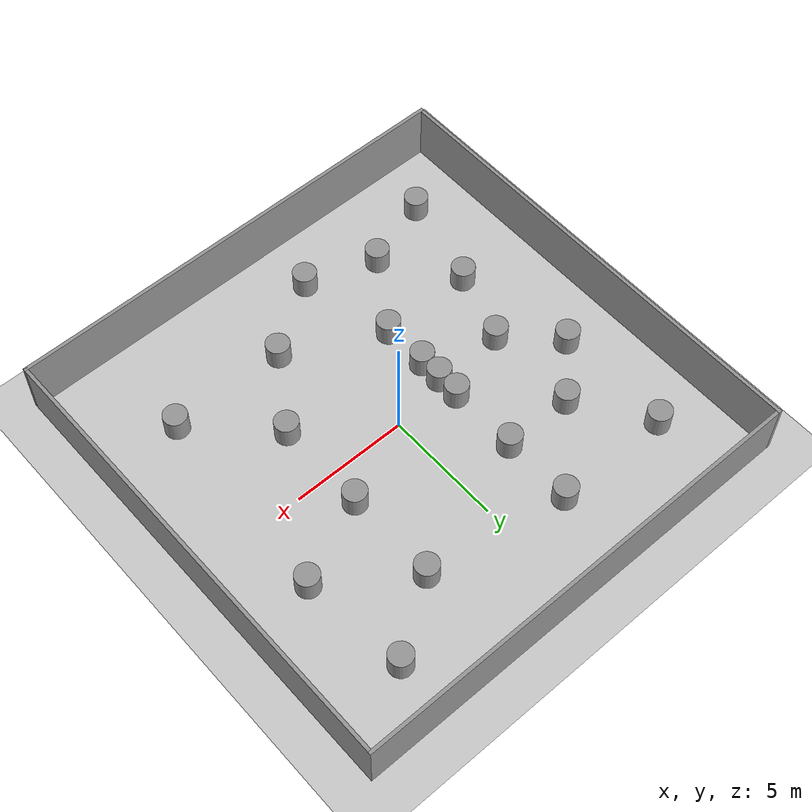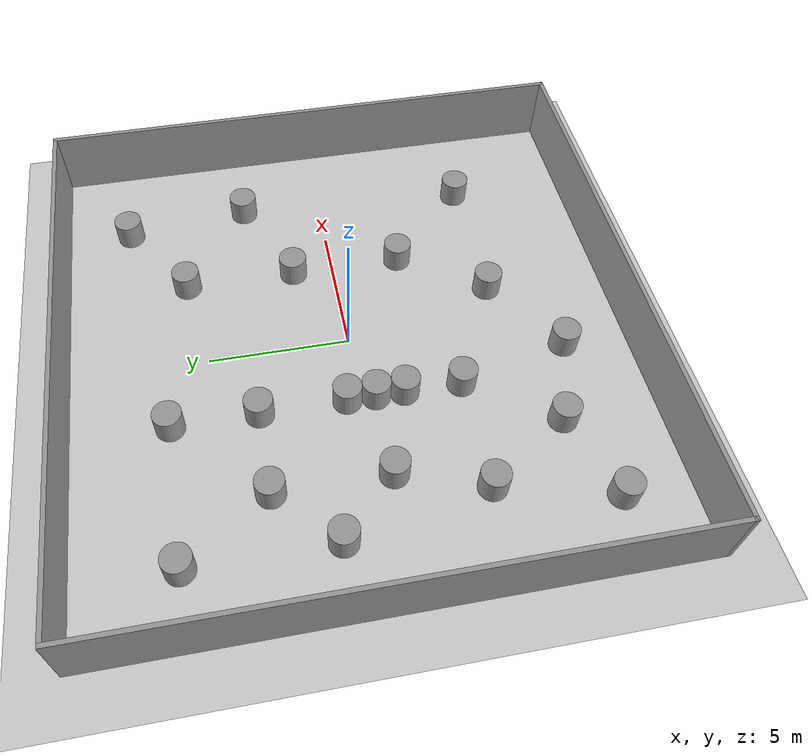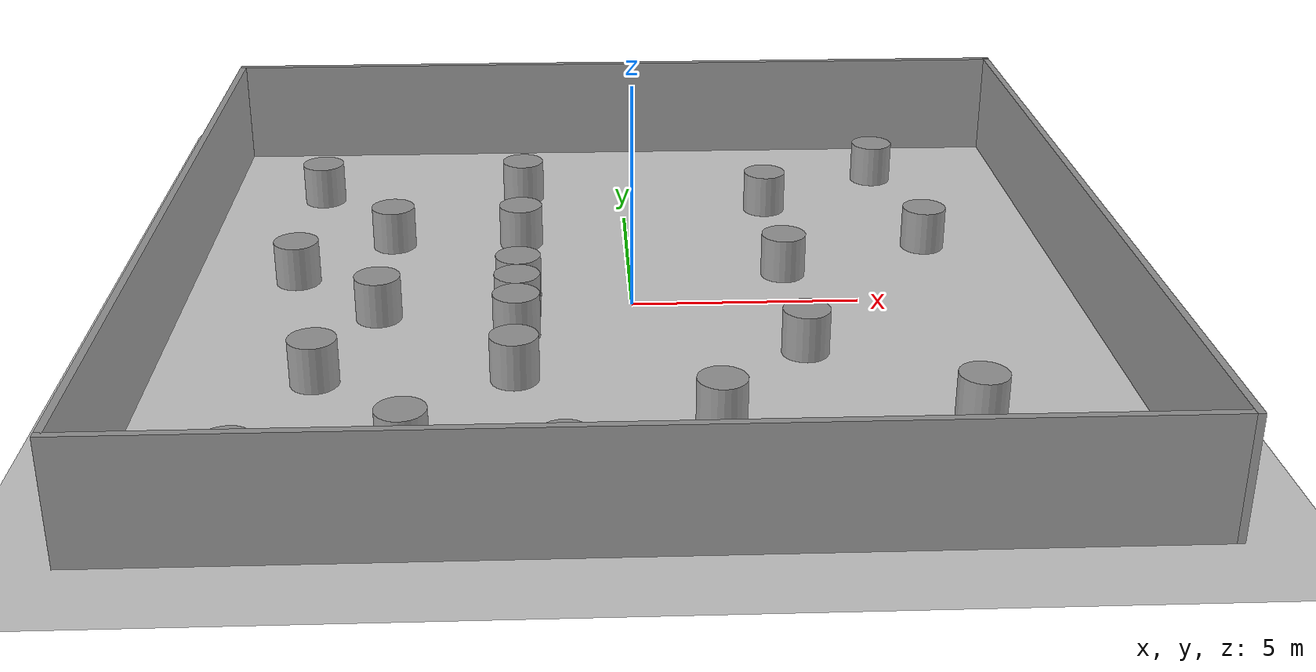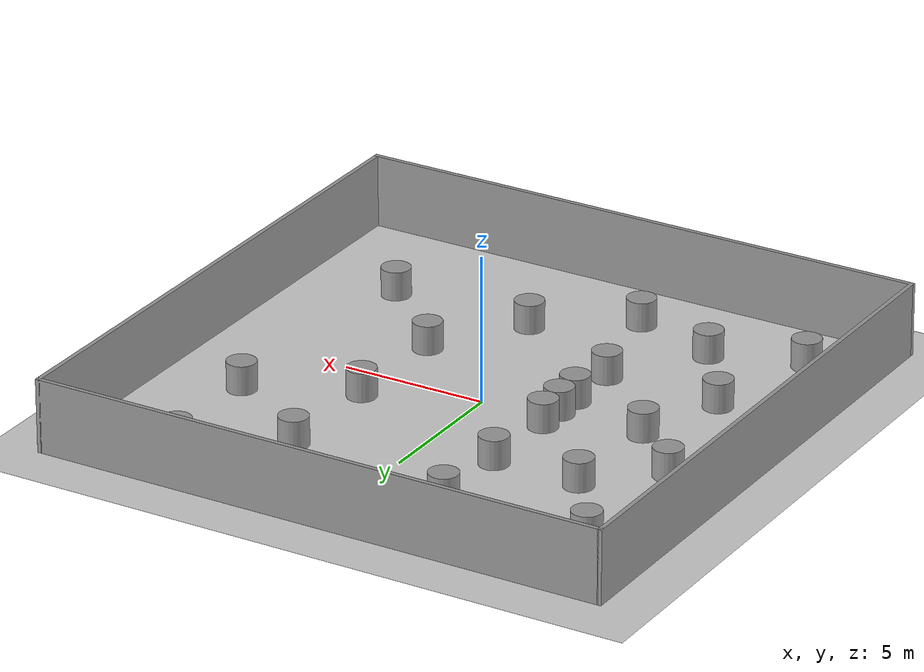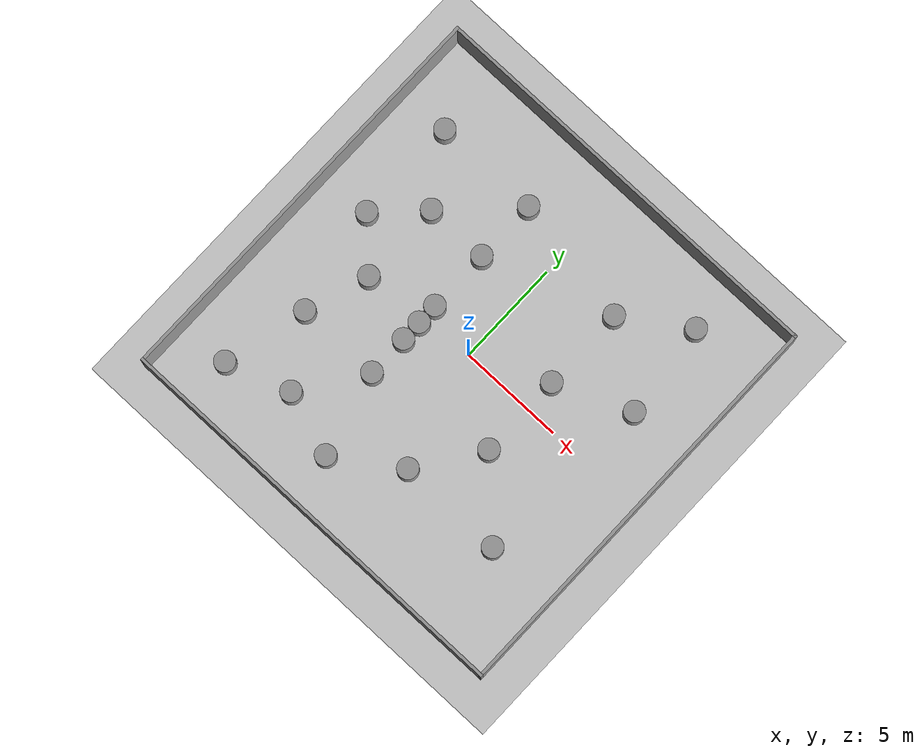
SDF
<sdf version="1.7">
 <world name="default">
  <light name="sun" type="directional">
   <pose>0 0 10 0 -0 0</pose>
   <diffuse>0.8 0.8 0.8 1</diffuse>
   <specular>0.2 0.2 0.2 1</specular>
   <attenuation>
    <range>1000</range>
    <constant>0.9</constant>
    <linear>0.01</linear>
    <quadratic>0.001</quadratic>
   </attenuation>
   <direction>-0.5 0.1 -0.9</direction>
   <spot><inner_angle>0</inner_angle><outer_angle>0</outer_angle><falloff>0</falloff></spot>
  </light>
  <model name="ground_plane">
   <static>1</static>
   <link name="link">
    <collision name="collision">
     <geometry><plane><normal>0 0 1</normal><size>100 100</size></plane></geometry>
     <surface><friction><ode><mu>100</mu><mu2>50</mu2></ode></friction></surface>
    </collision>
    <visual name="visual">
     <cast_shadows>0</cast_shadows>
     <geometry><plane><normal>0 0 1</normal><size>100 100</size></plane></geometry>
     <material>
      <script><uri>file://media/materials/scripts/gazebo.material</uri><name>Gazebo/Grey</name></script>
     </material>
    </visual>
   </link>
  </model>
  <gravity>0 0 -9.8</gravity>
  <magnetic_field>6e-06 2.3e-05 -4.2e-05</magnetic_field>
  <atmosphere type="adiabatic"/>
  <physics type="ode">
   <max_step_size>0.001</max_step_size>
   <real_time_factor>1</real_time_factor>
   <real_time_update_rate>0</real_time_update_rate>
  </physics>
  <scene><ambient>0.4 0.4 0.4 1</ambient><background>0.7 0.7 0.7 1</background><shadows>1</shadows></scene>
  <audio><device>default</device></audio>
  <spherical_coordinates>
   <surface_model>EARTH_WGS84</surface_model>
   <latitude_deg>0</latitude_deg>
   <longitude_deg>0</longitude_deg>
   <elevation>0</elevation>
   <heading_deg>0</heading_deg>
  </spherical_coordinates>
  <model name="square_20_20">
   <link name="Wall_0">
    <collision name="Wall_0_Collision">
     <geometry><box><size>20 0.15 2.5</size></box></geometry>
     <pose>0 0 1.25 0 -0 0</pose>
    </collision>
    <visual name="Wall_0_Visual">
     <pose>0 0 1.25 0 -0 0</pose>
     <geometry><box><size>20 0.15 2.5</size></box></geometry>
     <material>
      <script><uri>file://media/materials/scripts/gazebo.material</uri><name>Gazebo/Grey</name></script>
      <ambient>1 1 1 1</ambient>
     </material>
     <meta><layer>0</layer></meta>
    </visual>
    <pose>-0 -9.925 0 0 -0 0</pose>
   </link>
   <link name="Wall_2">
    <collision name="Wall_2_Collision">
     <geometry><box><size>20 0.15 2.5</size></box></geometry>
     <pose>0 0 1.25 0 -0 0</pose>
    </collision>
    <visual name="Wall_2_Visual">
     <pose>0 0 1.25 0 -0 0</pose>
     <geometry><box><size>20 0.15 2.5</size></box></geometry>
     <material>
      <script><uri>file://media/materials/scripts/gazebo.material</uri><name>Gazebo/Grey</name></script>
      <ambient>1 1 1 1</ambient>
     </material>
     <meta><layer>0</layer></meta>
    </visual>
    <pose>-9.925 -0 0 0 -0 1.5708</pose>
   </link>
   <link name="Wall_3">
    <collision name="Wall_3_Collision">
     <geometry><box><size>20 0.15 2.5</size></box></geometry>
     <pose>0 0 1.25 0 -0 0</pose>
    </collision>
    <visual name="Wall_3_Visual">
     <pose>0 0 1.25 0 -0 0</pose>
     <geometry><box><size>20 0.15 2.5</size></box></geometry>
     <material>
      <script><uri>file://media/materials/scripts/gazebo.material</uri><name>Gazebo/Grey</name></script>
      <ambient>1 1 1 1</ambient>
     </material>
     <meta><layer>0</layer></meta>
    </visual>
    <pose>-0 9.925 0 0 -0 0</pose>
   </link>
   <link name="Wall_5">
    <collision name="Wall_5_Collision">
     <geometry><box><size>20 0.15 2.5</size></box></geometry>
     <pose>0 0 1.25 0 -0 0</pose>
    </collision>
    <visual name="Wall_5_Visual">
     <pose>0 0 1.25 0 -0 0</pose>
     <geometry><box><size>20 0.15 2.5</size></box></geometry>
     <material>
      <script><uri>file://media/materials/scripts/gazebo.material</uri><name>Gazebo/Grey</name></script>
      <ambient>1 1 1 1</ambient>
     </material>
     <meta><layer>0</layer></meta>
    </visual>
    <pose>9.925 -0 0 0 -0 -1.5708</pose>
   </link>
   <static>1</static>
  </model>
  <model name="unit_cylinder">
   <pose>-7.5 -7.5 0.499994 -3e-06 -1e-06 -0</pose>
   <link name="link">
    <inertial>
     <mass>1</mass>
     <inertia><ixx>0.145833</ixx><ixy>0</ixy><ixz>0</ixz><iyy>0.145833</iyy><iyz>0</iyz><izz>0.125</izz></inertia>
    </inertial>
    <collision name="collision">
     <geometry><cylinder><radius>0.5</radius><length>1</length></cylinder></geometry>
    </collision>
    <visual name="visual">
     <geometry><cylinder><radius>0.5</radius><length>1</length></cylinder></geometry>
     <material>
      <script><name>Gazebo/Grey</name><uri>file://media/materials/scripts/gazebo.material</uri></script>
     </material>
    </visual>
   </link>
  </model>
  <model name="unit_cylinder_0">
   <pose>-4.5 -6.5 0.499997 3e-06 2e-06 0</pose>
   <link name="link">
    <inertial>
     <mass>1</mass>
     <inertia><ixx>0.145833</ixx><ixy>0</ixy><ixz>0</ixz><iyy>0.145833</iyy><iyz>0</iyz><izz>0.125</izz></inertia>
    </inertial>
    <collision name="collision">
     <geometry><cylinder><radius>0.5</radius><length>1</length></cylinder></geometry>
    </collision>
    <visual name="visual">
     <geometry><cylinder><radius>0.5</radius><length>1</length></cylinder></geometry>
     <material>
      <script><name>Gazebo/Grey</name><uri>file://media/materials/scripts/gazebo.material</uri></script>
     </material>
    </visual>
   </link>
  </model>
  <model name="unit_cylinder_1">
   <pose>-6.5 -3.5 0.499994 -3e-06 -1e-06 -0</pose>
   <link name="link">
    <inertial>
     <mass>1</mass>
     <inertia><ixx>0.145833</ixx><ixy>0</ixy><ixz>0</ixz><iyy>0.145833</iyy><iyz>0</iyz><izz>0.125</izz></inertia>
    </inertial>
    <collision name="collision">
     <geometry><cylinder><radius>0.5</radius><length>1</length></cylinder></geometry>
    </collision>
    <visual name="visual">
     <geometry><cylinder><radius>0.5</radius><length>1</length></cylinder></geometry>
     <material>
      <script><name>Gazebo/Grey</name><uri>file://media/materials/scripts/gazebo.material</uri></script>
     </material>
    </visual>
   </link>
  </model>
  <model name="unit_cylinder_2">
   <pose>-2.5 -3.5 0.499996 3e-06 1e-06 -0</pose>
   <link name="link">
    <inertial>
     <mass>1</mass>
     <inertia><ixx>0.145833</ixx><ixy>0</ixy><ixz>0</ixz><iyy>0.145833</iyy><iyz>0</iyz><izz>0.125</izz></inertia>
    </inertial>
    <collision name="collision">
     <geometry><cylinder><radius>0.5</radius><length>1</length></cylinder></geometry>
    </collision>
    <visual name="visual">
     <geometry><cylinder><radius>0.5</radius><length>1</length></cylinder></geometry>
     <material>
      <script><name>Gazebo/Grey</name><uri>file://media/materials/scripts/gazebo.material</uri></script>
     </material>
    </visual>
   </link>
  </model>
  <model name="unit_cylinder_3">
   <pose>-1.5 -7.5 0.499994 -3e-06 -1e-06 -0</pose>
   <link name="link">
    <inertial>
     <mass>1</mass>
     <inertia><ixx>0.145833</ixx><ixy>0</ixy><ixz>0</ixz><iyy>0.145833</iyy><iyz>0</iyz><izz>0.125</izz></inertia>
    </inertial>
    <collision name="collision">
     <geometry><cylinder><radius>0.5</radius><length>1</length></cylinder></geometry>
    </collision>
    <visual name="visual">
     <geometry><cylinder><radius>0.5</radius><length>1</length></cylinder></geometry>
     <material>
      <script><name>Gazebo/Grey</name><uri>file://media/materials/scripts/gazebo.material</uri></script>
     </material>
    </visual>
   </link>
  </model>
  <model name="unit_cylinder_4">
   <pose>1.5 -5.5 0.499997 3e-06 1e-06 -0</pose>
   <link name="link">
    <inertial>
     <mass>1</mass>
     <inertia><ixx>0.145833</ixx><ixy>0</ixy><ixz>0</ixz><iyy>0.145833</iyy><iyz>0</iyz><izz>0.125</izz></inertia>
    </inertial>
    <collision name="collision">
     <geometry><cylinder><radius>0.5</radius><length>1</length></cylinder></geometry>
    </collision>
    <visual name="visual">
     <geometry><cylinder><radius>0.5</radius><length>1</length></cylinder></geometry>
     <material>
      <script><name>Gazebo/Grey</name><uri>file://media/materials/scripts/gazebo.material</uri></script>
     </material>
    </visual>
   </link>
  </model>
  <model name="unit_cylinder_5">
   <pose>3.5 -2.5 0.499994 -4e-06 -3e-06 -0</pose>
   <link name="link">
    <inertial>
     <mass>1</mass>
     <inertia><ixx>0.145833</ixx><ixy>0</ixy><ixz>0</ixz><iyy>0.145833</iyy><iyz>0</iyz><izz>0.125</izz></inertia>
    </inertial>
    <collision name="collision">
     <geometry><cylinder><radius>0.5</radius><length>1</length></cylinder></geometry>
    </collision>
    <visual name="visual">
     <geometry><cylinder><radius>0.5</radius><length>1</length></cylinder></geometry>
     <material>
      <script><name>Gazebo/Grey</name><uri>file://media/materials/scripts/gazebo.material</uri></script>
     </material>
    </visual>
   </link>
  </model>
  <model name="unit_cylinder_6">
   <pose>6.5 -5.5 0.499997 4e-06 4e-06 -0</pose>
   <link name="link">
    <inertial>
     <mass>1</mass>
     <inertia><ixx>0.145833</ixx><ixy>0</ixy><ixz>0</ixz><iyy>0.145833</iyy><iyz>0</iyz><izz>0.125</izz></inertia>
    </inertial>
    <collision name="collision">
     <geometry><cylinder><radius>0.5</radius><length>1</length></cylinder></geometry>
    </collision>
    <visual name="visual">
     <geometry><cylinder><radius>0.5</radius><length>1</length></cylinder></geometry>
     <material>
      <script><name>Gazebo/Grey</name><uri>file://media/materials/scripts/gazebo.material</uri></script>
     </material>
    </visual>
   </link>
  </model>
  <model name="unit_cylinder_7">
   <pose>3.5 1.5 0.499998 3e-06 4e-06 -0</pose>
   <link name="link">
    <inertial>
     <mass>1</mass>
     <inertia><ixx>0.145833</ixx><ixy>0</ixy><ixz>0</ixz><iyy>0.145833</iyy><iyz>0</iyz><izz>0.125</izz></inertia>
    </inertial>
    <collision name="collision">
     <geometry><cylinder><radius>0.5</radius><length>1</length></cylinder></geometry>
    </collision>
    <visual name="visual">
     <geometry><cylinder><radius>0.5</radius><length>1</length></cylinder></geometry>
     <material>
      <script><name>Gazebo/Grey</name><uri>file://media/materials/scripts/gazebo.material</uri></script>
     </material>
    </visual>
   </link>
  </model>
  <model name="unit_cylinder_8">
   <pose>3.5 5.5 0.499994 -4e-06 -3e-06 -0</pose>
   <link name="link">
    <inertial>
     <mass>1</mass>
     <inertia><ixx>0.145833</ixx><ixy>0</ixy><ixz>0</ixz><iyy>0.145833</iyy><iyz>0</iyz><izz>0.125</izz></inertia>
    </inertial>
    <collision name="collision">
     <geometry><cylinder><radius>0.5</radius><length>1</length></cylinder></geometry>
    </collision>
    <visual name="visual">
     <geometry><cylinder><radius>0.5</radius><length>1</length></cylinder></geometry>
     <material>
      <script><name>Gazebo/Grey</name><uri>file://media/materials/scripts/gazebo.material</uri></script>
     </material>
    </visual>
   </link>
  </model>
  <model name="unit_cylinder_9">
   <pose>-7.5 6.5 0.499994 -4e-06 -3e-06 -0</pose>
   <link name="link">
    <inertial>
     <mass>1</mass>
     <inertia><ixx>0.145833</ixx><ixy>0</ixy><ixz>0</ixz><iyy>0.145833</iyy><iyz>0</iyz><izz>0.125</izz></inertia>
    </inertial>
    <collision name="collision">
     <geometry><cylinder><radius>0.5</radius><length>1</length></cylinder></geometry>
    </collision>
    <visual name="visual">
     <geometry><cylinder><radius>0.5</radius><length>1</length></cylinder></geometry>
     <material>
      <script><name>Gazebo/Grey</name><uri>file://media/materials/scripts/gazebo.material</uri></script>
     </material>
    </visual>
   </link>
  </model>
  <model name="unit_cylinder_10">
   <pose>-5.5 3.5 0.499996 3e-06 2e-06 0</pose>
   <link name="link">
    <inertial>
     <mass>1</mass>
     <inertia><ixx>0.145833</ixx><ixy>0</ixy><ixz>0</ixz><iyy>0.145833</iyy><iyz>0</iyz><izz>0.125</izz></inertia>
    </inertial>
    <collision name="collision">
     <geometry><cylinder><radius>0.5</radius><length>1</length></cylinder></geometry>
    </collision>
    <visual name="visual">
     <geometry><cylinder><radius>0.5</radius><length>1</length></cylinder></geometry>
     <material>
      <script><name>Gazebo/Grey</name><uri>file://media/materials/scripts/gazebo.material</uri></script>
     </material>
    </visual>
   </link>
  </model>
  <model name="unit_cylinder_11">
   <pose>-2.5 6.5 0.499993 -4e-06 -1e-06 0</pose>
   <link name="link">
    <inertial>
     <mass>1</mass>
     <inertia><ixx>0.145833</ixx><ixy>0</ixy><ixz>0</ixz><iyy>0.145833</iyy><iyz>0</iyz><izz>0.125</izz></inertia>
    </inertial>
    <collision name="collision">
     <geometry><cylinder><radius>0.5</radius><length>1</length></cylinder></geometry>
    </collision>
    <visual name="visual">
     <geometry><cylinder><radius>0.5</radius><length>1</length></cylinder></geometry>
     <material>
      <script><name>Gazebo/Grey</name><uri>file://media/materials/scripts/gazebo.material</uri></script>
     </material>
    </visual>
   </link>
  </model>
  <model name="unit_cylinder_12">
   <pose>-2.5 3.5 0.499996 4e-06 1e-06 0</pose>
   <link name="link">
    <inertial>
     <mass>1</mass>
     <inertia><ixx>0.145833</ixx><ixy>0</ixy><ixz>0</ixz><iyy>0.145833</iyy><iyz>0</iyz><izz>0.125</izz></inertia>
    </inertial>
    <collision name="collision">
     <geometry><cylinder><radius>0.5</radius><length>1</length></cylinder></geometry>
    </collision>
    <visual name="visual">
     <geometry><cylinder><radius>0.5</radius><length>1</length></cylinder></geometry>
     <material>
      <script><name>Gazebo/Grey</name><uri>file://media/materials/scripts/gazebo.material</uri></script>
     </material>
    </visual>
   </link>
  </model>
  <model name="unit_cylinder_13">
   <pose>-5.5 -0.500004 0.499996 4e-06 1e-06 0</pose>
   <link name="link">
    <inertial>
     <mass>1</mass>
     <inertia><ixx>0.145833</ixx><ixy>0</ixy><ixz>0</ixz><iyy>0.145833</iyy><iyz>0</iyz><izz>0.125</izz></inertia>
    </inertial>
    <collision name="collision">
     <geometry><cylinder><radius>0.5</radius><length>1</length></cylinder></geometry>
    </collision>
    <visual name="visual">
     <geometry><cylinder><radius>0.5</radius><length>1</length></cylinder></geometry>
     <material>
      <script><name>Gazebo/Grey</name><uri>file://media/materials/scripts/gazebo.material</uri></script>
     </material>
    </visual>
   </link>
  </model>
  <model name="unit_cylinder_14">
   <pose>6.5 7.5 0.499996 4e-06 1e-06 0</pose>
   <link name="link">
    <inertial>
     <mass>1</mass>
     <inertia><ixx>0.145833</ixx><ixy>0</ixy><ixz>0</ixz><iyy>0.145833</iyy><iyz>0</iyz><izz>0.125</izz></inertia>
    </inertial>
    <collision name="collision">
     <geometry><cylinder><radius>0.5</radius><length>1</length></cylinder></geometry>
    </collision>
    <visual name="visual">
     <geometry><cylinder><radius>0.5</radius><length>1</length></cylinder></geometry>
     <material>
      <script><name>Gazebo/Grey</name><uri>file://media/materials/scripts/gazebo.material</uri></script>
     </material>
    </visual>
   </link>
  </model>
  <model name="unit_cylinder_15">
   <pose>7 3 0.499993 -4e-06 -1e-06 0</pose>
   <link name="link">
    <inertial>
     <mass>1</mass>
     <inertia><ixx>0.145833</ixx><ixy>0</ixy><ixz>0</ixz><iyy>0.145833</iyy><iyz>0</iyz><izz>0.125</izz></inertia>
    </inertial>
    <collision name="collision">
     <geometry><cylinder><radius>0.5</radius><length>1</length></cylinder></geometry>
    </collision>
    <visual name="visual">
     <geometry><cylinder><radius>0.5</radius><length>1</length></cylinder></geometry>
     <material>
      <script><name>Gazebo/Grey</name><uri>file://media/materials/scripts/gazebo.material</uri></script>
     </material>
    </visual>
   </link>
  </model>
  <model name="unit_cylinder_16">
   <pose>-7.5 1.5 0.499996 4e-06 2e-06 -0</pose>
   <link name="link">
    <inertial>
     <mass>1</mass>
     <inertia><ixx>0.145833</ixx><ixy>0</ixy><ixz>0</ixz><iyy>0.145833</iyy><iyz>0</iyz><izz>0.125</izz></inertia>
    </inertial>
    <collision name="collision">
     <geometry><cylinder><radius>0.5</radius><length>1</length></cylinder></geometry>
    </collision>
    <visual name="visual">
     <geometry><cylinder><radius>0.5</radius><length>1</length></cylinder></geometry>
     <material>
      <script><name>Gazebo/Grey</name><uri>file://media/materials/scripts/gazebo.material</uri></script>
     </material>
    </visual>
   </link>
  </model>
  <model name="unit_cylinder_17">
   <pose>-2.5 0.501425 0.499991 1e-06 0 -0.007221</pose>
   <link name="link">
    <inertial>
     <mass>1</mass>
     <inertia><ixx>0.145833</ixx><ixy>0</ixy><ixz>0</ixz><iyy>0.145833</iyy><iyz>0</iyz><izz>0.125</izz></inertia>
    </inertial>
    <collision name="collision">
     <geometry><cylinder><radius>0.5</radius><length>1</length></cylinder></geometry>
    </collision>
    <visual name="visual">
     <geometry><cylinder><radius>0.5</radius><length>1</length></cylinder></geometry>
     <material>
      <script><name>Gazebo/Grey</name><uri>file://media/materials/scripts/gazebo.material</uri></script>
     </material>
    </visual>
   </link>
  </model>
  <model name="unit_cylinder_18">
   <pose>-2.5 -1.50001 0.498481 0 0 -0.001696</pose>
   <link name="link">
    <inertial>
     <mass>1</mass>
     <inertia><ixx>0.145833</ixx><ixy>0</ixy><ixz>0</ixz><iyy>0.145833</iyy><iyz>0</iyz><izz>0.125</izz></inertia>
    </inertial>
    <collision name="collision">
     <geometry><cylinder><radius>0.5</radius><length>1</length></cylinder></geometry>
    </collision>
    <visual name="visual">
     <geometry><cylinder><radius>0.5</radius><length>1</length></cylinder></geometry>
     <material>
      <script><name>Gazebo/Grey</name><uri>file://media/materials/scripts/gazebo.material</uri></script>
     </material>
    </visual>
   </link>
  </model>
  <model name="unit_cylinder_19">
   <pose>-2.5 -0.500007 0.499998 3e-06 -4e-06 0.004752</pose>
   <link name="link">
    <inertial>
     <mass>1</mass>
     <inertia><ixx>0.145833</ixx><ixy>0</ixy><ixz>0</ixz><iyy>0.145833</iyy><iyz>0</iyz><izz>0.125</izz></inertia>
    </inertial>
    <collision name="collision">
     <geometry><cylinder><radius>0.5</radius><length>1</length></cylinder></geometry>
    </collision>
    <visual name="visual">
     <geometry><cylinder><radius>0.5</radius><length>1</length></cylinder></geometry>
     <material>
      <script><name>Gazebo/Grey</name><uri>file://media/materials/scripts/gazebo.material</uri></script>
     </material>
    </visual>
   </link>
  </model>
 </world>
</sdf>
